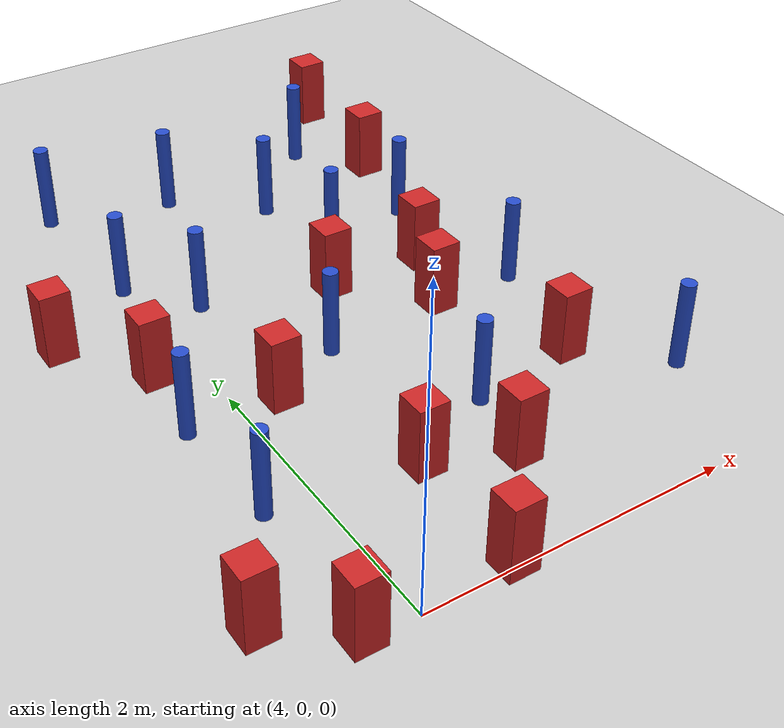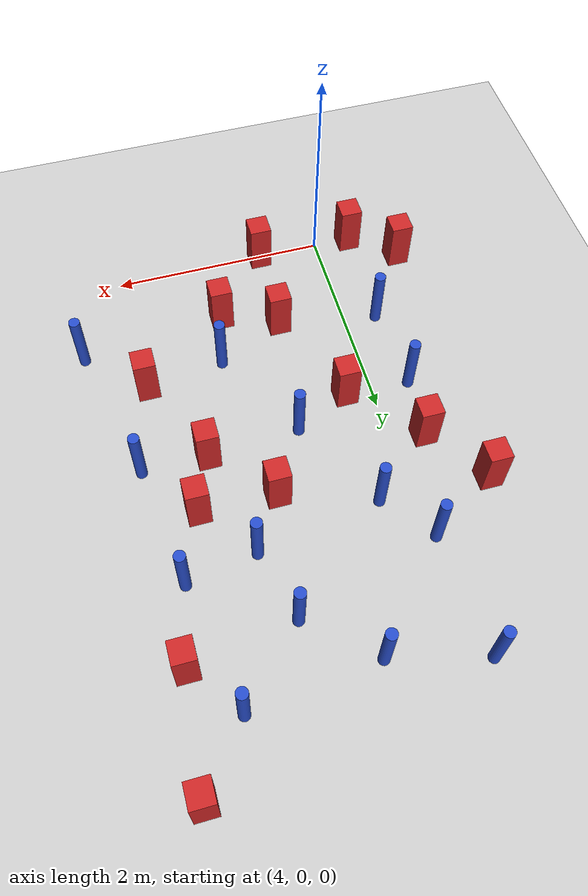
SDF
<sdf version="1.6">
 <world name="default">
  <model name="ground_plane">
   <static>1</static>
   <link name="link">
    <collision name="collision">
     <geometry><plane><normal>0 0 1</normal><size>100 100</size></plane></geometry>
     <surface><friction><ode><mu>100</mu><mu2>50</mu2></ode></friction></surface>
    </collision>
    <visual name="visual">
     <cast_shadows>0</cast_shadows>
     <geometry><plane><normal>0 0 1</normal><size>100 100</size></plane></geometry>
     <material>
      <ambient>1.0 1.0 1.0 1.0</ambient>
      <diffuse>0.8 0.8 0.8 1.0</diffuse>
      <specular>0.01 0.01 0.01 1.000000</specular>
     </material>
    </visual>
   </link>
  </model>
  <model name="pole_obstacle6">
   <static>true</static>
   <pose>5.24686441359 3.76029672284 7.38925637345e-09 -8.47170692798e-08 1.24976764937e-08 -1.74513093023e-07</pose>
   <link name="link">
    <pose>0 0 0.3 0 -0 0</pose>
    <inertial>
     <mass>1</mass>
     <inertia><ixx>0.145833</ixx><ixy>0</ixy><ixz>0</ixz><iyy>0.145833</iyy><iyz>0</iyz><izz>0.125</izz></inertia>
    </inertial>
    <collision name="collision">
     <geometry><cylinder><radius>0.05</radius><length>.6</length></cylinder></geometry>
    </collision>
    <visual name="visual">
     <geometry><cylinder><radius>0.05</radius><length>.6</length></cylinder></geometry>
     <material>
      <script><name>Gazebo/Blue</name><uri>file://media/materials/scripts/gazebo.material</uri></script>
     </material>
    </visual>
   </link>
  </model>
  <model name="square_post_obstacle30">
   <static>true</static>
   <pose>5.13288017218 0.674521279068 1.91545236811e-07 -7.35059704564e-06 1.12565212e-07 2.39332434364e-05</pose>
   <link name="link">
    <pose>0 0 0.25 0 -0 0</pose>
    <inertial>
     <mass>100</mass>
     <inertia>
      <ixx>0.166667</ixx>
      <ixy>0</ixy>
      <ixz>0</ixz>
      <iyy>0.166667</iyy>
      <iyz>0</iyz>
      <izz>0.166667</izz>
     </inertia>
    </inertial>
    <collision name="collision"><geometry><box><size>.2 .2 .5</size></box></geometry></collision>
    <visual name="visual">
     <geometry><box><size>.2 .2 .5</size></box></geometry>
     <material>
      <script><name>Gazebo/Red</name><uri>file://media/materials/scripts/gazebo.material</uri></script>
     </material>
    </visual>
   </link>
  </model>
  <model name="pole_obstacle37">
   <static>true</static>
   <pose>5.84280054387 4.3593617072 7.38925637345e-09 -8.47170692796e-08 1.24976764786e-08 -1.74513093032e-07</pose>
   <link name="link">
    <pose>0 0 0.3 0 -0 0</pose>
    <inertial>
     <mass>1</mass>
     <inertia><ixx>0.145833</ixx><ixy>0</ixy><ixz>0</ixz><iyy>0.145833</iyy><iyz>0</iyz><izz>0.125</izz></inertia>
    </inertial>
    <collision name="collision">
     <geometry><cylinder><radius>0.05</radius><length>.6</length></cylinder></geometry>
    </collision>
    <visual name="visual">
     <geometry><cylinder><radius>0.05</radius><length>.6</length></cylinder></geometry>
     <material>
      <script><name>Gazebo/Blue</name><uri>file://media/materials/scripts/gazebo.material</uri></script>
     </material>
    </visual>
   </link>
  </model>
  <model name="square_post_obstacle42">
   <static>true</static>
   <pose>3.70733429573 2.41052173213 1.91545236811e-07 -7.35059704564e-06 1.12565212e-07 2.39332434364e-05</pose>
   <link name="link">
    <pose>0 0 0.25 0 -0 0</pose>
    <inertial>
     <mass>100</mass>
     <inertia>
      <ixx>0.166667</ixx>
      <ixy>0</ixy>
      <ixz>0</ixz>
      <iyy>0.166667</iyy>
      <iyz>0</iyz>
      <izz>0.166667</izz>
     </inertia>
    </inertial>
    <collision name="collision"><geometry><box><size>.2 .2 .5</size></box></geometry></collision>
    <visual name="visual">
     <geometry><box><size>.2 .2 .5</size></box></geometry>
     <material>
      <script><name>Gazebo/Red</name><uri>file://media/materials/scripts/gazebo.material</uri></script>
     </material>
    </visual>
   </link>
  </model>
  <model name="pole_obstacle52">
   <static>true</static>
   <pose>3.86616990221 4.44570101452 7.38925637345e-09 -8.47170692798e-08 1.24976765033e-08 -1.74513093019e-07</pose>
   <link name="link">
    <pose>0 0 0.3 0 -0 0</pose>
    <inertial>
     <mass>1</mass>
     <inertia><ixx>0.145833</ixx><ixy>0</ixy><ixz>0</ixz><iyy>0.145833</iyy><iyz>0</iyz><izz>0.125</izz></inertia>
    </inertial>
    <collision name="collision">
     <geometry><cylinder><radius>0.05</radius><length>.6</length></cylinder></geometry>
    </collision>
    <visual name="visual">
     <geometry><cylinder><radius>0.05</radius><length>.6</length></cylinder></geometry>
     <material>
      <script><name>Gazebo/Blue</name><uri>file://media/materials/scripts/gazebo.material</uri></script>
     </material>
    </visual>
   </link>
  </model>
  <model name="pole_obstacle63">
   <static>true</static>
   <pose>4.76035839436 2.07022243836 7.38925637345e-09 -8.47170692798e-08 1.24976764937e-08 -1.74513093023e-07</pose>
   <link name="link">
    <pose>0 0 0.3 0 -0 0</pose>
    <inertial>
     <mass>1</mass>
     <inertia><ixx>0.145833</ixx><ixy>0</ixy><ixz>0</ixz><iyy>0.145833</iyy><iyz>0</iyz><izz>0.125</izz></inertia>
    </inertial>
    <collision name="collision">
     <geometry><cylinder><radius>0.05</radius><length>.6</length></cylinder></geometry>
    </collision>
    <visual name="visual">
     <geometry><cylinder><radius>0.05</radius><length>.6</length></cylinder></geometry>
     <material>
      <script><name>Gazebo/Blue</name><uri>file://media/materials/scripts/gazebo.material</uri></script>
     </material>
    </visual>
   </link>
  </model>
  <model name="square_post_obstacle75">
   <static>true</static>
   <pose>4.25424207896 1.82605460015 1.91545236811e-07 -7.35059704564e-06 1.12565212e-07 2.39332434364e-05</pose>
   <link name="link">
    <pose>0 0 0.25 0 -0 0</pose>
    <inertial>
     <mass>100</mass>
     <inertia>
      <ixx>0.166667</ixx>
      <ixy>0</ixy>
      <ixz>0</ixz>
      <iyy>0.166667</iyy>
      <iyz>0</iyz>
      <izz>0.166667</izz>
     </inertia>
    </inertial>
    <collision name="collision"><geometry><box><size>.2 .2 .5</size></box></geometry></collision>
    <visual name="visual">
     <geometry><box><size>.2 .2 .5</size></box></geometry>
     <material>
      <script><name>Gazebo/Red</name><uri>file://media/materials/scripts/gazebo.material</uri></script>
     </material>
    </visual>
   </link>
  </model>
  <model name="pole_obstacle73">
   <static>true</static>
   <pose>6.19446029751 2.12766933946 7.38925637345e-09 -8.47170692798e-08 1.24976764937e-08 -1.74513093023e-07</pose>
   <link name="link">
    <pose>0 0 0.3 0 -0 0</pose>
    <inertial>
     <mass>1</mass>
     <inertia><ixx>0.145833</ixx><ixy>0</ixy><ixz>0</ixz><iyy>0.145833</iyy><iyz>0</iyz><izz>0.125</izz></inertia>
    </inertial>
    <collision name="collision">
     <geometry><cylinder><radius>0.05</radius><length>.6</length></cylinder></geometry>
    </collision>
    <visual name="visual">
     <geometry><cylinder><radius>0.05</radius><length>.6</length></cylinder></geometry>
     <material>
      <script><name>Gazebo/Blue</name><uri>file://media/materials/scripts/gazebo.material</uri></script>
     </material>
    </visual>
   </link>
  </model>
  <model name="square_post_obstacle77">
   <static>true</static>
   <pose>5.11859508152 2.65492560635 1.91545236811e-07 -7.35059704564e-06 1.12565212e-07 2.39332434364e-05</pose>
   <link name="link">
    <pose>0 0 0.25 0 -0 0</pose>
    <inertial>
     <mass>100</mass>
     <inertia>
      <ixx>0.166667</ixx>
      <ixy>0</ixy>
      <ixz>0</ixz>
      <iyy>0.166667</iyy>
      <iyz>0</iyz>
      <izz>0.166667</izz>
     </inertia>
    </inertial>
    <collision name="collision"><geometry><box><size>.2 .2 .5</size></box></geometry></collision>
    <visual name="visual">
     <geometry><box><size>.2 .2 .5</size></box></geometry>
     <material>
      <script><name>Gazebo/Red</name><uri>file://media/materials/scripts/gazebo.material</uri></script>
     </material>
    </visual>
   </link>
  </model>
  <model name="pole_obstacle80">
   <static>true</static>
   <pose>3.93960398755 3.36603298096 7.38925637345e-09 -8.47170692798e-08 1.24976764939e-08 -1.74513093025e-07</pose>
   <link name="link">
    <pose>0 0 0.3 0 -0 0</pose>
    <inertial>
     <mass>1</mass>
     <inertia><ixx>0.145833</ixx><ixy>0</ixy><ixz>0</ixz><iyy>0.145833</iyy><iyz>0</iyz><izz>0.125</izz></inertia>
    </inertial>
    <collision name="collision">
     <geometry><cylinder><radius>0.05</radius><length>.6</length></cylinder></geometry>
    </collision>
    <visual name="visual">
     <geometry><cylinder><radius>0.05</radius><length>.6</length></cylinder></geometry>
     <material>
      <script><name>Gazebo/Blue</name><uri>file://media/materials/scripts/gazebo.material</uri></script>
     </material>
    </visual>
   </link>
  </model>
  <model name="pole_obstacle84">
   <static>true</static>
   <pose>5.24751490533 1.17985394361 7.38925637345e-09 -8.471706928e-08 1.24976765134e-08 -1.74513093015e-07</pose>
   <link name="link">
    <pose>0 0 0.3 0 -0 0</pose>
    <inertial>
     <mass>1</mass>
     <inertia><ixx>0.145833</ixx><ixy>0</ixy><ixz>0</ixz><iyy>0.145833</iyy><iyz>0</iyz><izz>0.125</izz></inertia>
    </inertial>
    <collision name="collision">
     <geometry><cylinder><radius>0.05</radius><length>.6</length></cylinder></geometry>
    </collision>
    <visual name="visual">
     <geometry><cylinder><radius>0.05</radius><length>.6</length></cylinder></geometry>
     <material>
      <script><name>Gazebo/Blue</name><uri>file://media/materials/scripts/gazebo.material</uri></script>
     </material>
    </visual>
   </link>
  </model>
  <model name="square_post_obstacle82">
   <static>true</static>
   <pose>3.66900997854 0.0325757577106 1.91545236811e-07 -7.35059704564e-06 1.12565212e-07 2.39332434364e-05</pose>
   <link name="link">
    <pose>0 0 0.25 0 -0 0</pose>
    <inertial>
     <mass>100</mass>
     <inertia>
      <ixx>0.166667</ixx>
      <ixy>0</ixy>
      <ixz>0</ixz>
      <iyy>0.166667</iyy>
      <iyz>0</iyz>
      <izz>0.166667</izz>
     </inertia>
    </inertial>
    <collision name="collision"><geometry><box><size>.2 .2 .5</size></box></geometry></collision>
    <visual name="visual">
     <geometry><box><size>.2 .2 .5</size></box></geometry>
     <material>
      <script><name>Gazebo/Red</name><uri>file://media/materials/scripts/gazebo.material</uri></script>
     </material>
    </visual>
   </link>
  </model>
  <model name="pole_obstacle90">
   <static>true</static>
   <pose>4.29182752671 2.92887068589 7.38925637345e-09 -8.47170692798e-08 1.24976764937e-08 -1.74513093023e-07</pose>
   <link name="link">
    <pose>0 0 0.3 0 -0 0</pose>
    <inertial>
     <mass>1</mass>
     <inertia><ixx>0.145833</ixx><ixy>0</ixy><ixz>0</ixz><iyy>0.145833</iyy><iyz>0</iyz><izz>0.125</izz></inertia>
    </inertial>
    <collision name="collision">
     <geometry><cylinder><radius>0.05</radius><length>.6</length></cylinder></geometry>
    </collision>
    <visual name="visual">
     <geometry><cylinder><radius>0.05</radius><length>.6</length></cylinder></geometry>
     <material>
      <script><name>Gazebo/Blue</name><uri>file://media/materials/scripts/gazebo.material</uri></script>
     </material>
    </visual>
   </link>
  </model>
  <model name="square_post_obstacle84">
   <static>true</static>
   <pose>5.80404412261 2.63800593922 1.91545236811e-07 -7.35059704564e-06 1.12565212e-07 2.39332434364e-05</pose>
   <link name="link">
    <pose>0 0 0.25 0 -0 0</pose>
    <inertial>
     <mass>100</mass>
     <inertia>
      <ixx>0.166667</ixx>
      <ixy>0</ixy>
      <ixz>0</ixz>
      <iyy>0.166667</iyy>
      <iyz>0</iyz>
      <izz>0.166667</izz>
     </inertia>
    </inertial>
    <collision name="collision"><geometry><box><size>.2 .2 .5</size></box></geometry></collision>
    <visual name="visual">
     <geometry><box><size>.2 .2 .5</size></box></geometry>
     <material>
      <script><name>Gazebo/Red</name><uri>file://media/materials/scripts/gazebo.material</uri></script>
     </material>
    </visual>
   </link>
  </model>
  <model name="pole_obstacle100">
   <static>true</static>
   <pose>3.6477077047 1.84033119703 7.38925637345e-09 -8.471706928e-08 1.24976765152e-08 -1.74513093012e-07</pose>
   <link name="link">
    <pose>0 0 0.3 0 -0 0</pose>
    <inertial>
     <mass>1</mass>
     <inertia><ixx>0.145833</ixx><ixy>0</ixy><ixz>0</ixz><iyy>0.145833</iyy><iyz>0</iyz><izz>0.125</izz></inertia>
    </inertial>
    <collision name="collision">
     <geometry><cylinder><radius>0.05</radius><length>.6</length></cylinder></geometry>
    </collision>
    <visual name="visual">
     <geometry><cylinder><radius>0.05</radius><length>.6</length></cylinder></geometry>
     <material>
      <script><name>Gazebo/Blue</name><uri>file://media/materials/scripts/gazebo.material</uri></script>
     </material>
    </visual>
   </link>
  </model>
  <model name="square_post_obstacle90">
   <static>true</static>
   <pose>4.58704493301 0.0254031396948 1.91545236811e-07 -7.35059704564e-06 1.12565212e-07 2.39332434364e-05</pose>
   <link name="link">
    <pose>0 0 0.25 0 -0 0</pose>
    <inertial>
     <mass>100</mass>
     <inertia>
      <ixx>0.166667</ixx>
      <ixy>0</ixy>
      <ixz>0</ixz>
      <iyy>0.166667</iyy>
      <iyz>0</iyz>
      <izz>0.166667</izz>
     </inertia>
    </inertial>
    <collision name="collision"><geometry><box><size>.2 .2 .5</size></box></geometry></collision>
    <visual name="visual">
     <geometry><box><size>.2 .2 .5</size></box></geometry>
     <material>
      <script><name>Gazebo/Red</name><uri>file://media/materials/scripts/gazebo.material</uri></script>
     </material>
    </visual>
   </link>
  </model>
  <model name="square_post_obstacle98">
   <static>true</static>
   <pose>6.18719778903 3.91540696605 1.91545236811e-07 -7.35059704564e-06 1.12565212e-07 2.39332434364e-05</pose>
   <link name="link">
    <pose>0 0 0.25 0 -0 0</pose>
    <inertial>
     <mass>100</mass>
     <inertia>
      <ixx>0.166667</ixx>
      <ixy>0</ixy>
      <ixz>0</ixz>
      <iyy>0.166667</iyy>
      <iyz>0</iyz>
      <izz>0.166667</izz>
     </inertia>
    </inertial>
    <collision name="collision"><geometry><box><size>.2 .2 .5</size></box></geometry></collision>
    <visual name="visual">
     <geometry><box><size>.2 .2 .5</size></box></geometry>
     <material>
      <script><name>Gazebo/Red</name><uri>file://media/materials/scripts/gazebo.material</uri></script>
     </material>
    </visual>
   </link>
  </model>
  <model name="pole_obstacle124">
   <static>true</static>
   <pose>6.0472711642 3.23607107506 7.38925637345e-09 -8.47170692798e-08 1.24976764937e-08 -1.74513093023e-07</pose>
   <link name="link">
    <pose>0 0 0.3 0 -0 0</pose>
    <inertial>
     <mass>1</mass>
     <inertia><ixx>0.145833</ixx><ixy>0</ixy><ixz>0</ixz><iyy>0.145833</iyy><iyz>0</iyz><izz>0.125</izz></inertia>
    </inertial>
    <collision name="collision">
     <geometry><cylinder><radius>0.05</radius><length>.6</length></cylinder></geometry>
    </collision>
    <visual name="visual">
     <geometry><cylinder><radius>0.05</radius><length>.6</length></cylinder></geometry>
     <material>
      <script><name>Gazebo/Blue</name><uri>file://media/materials/scripts/gazebo.material</uri></script>
     </material>
    </visual>
   </link>
  </model>
  <model name="pole_obstacle126">
   <static>true</static>
   <pose>3.69420544465 1.0326985294 7.38925637345e-09 -8.47170692793e-08 1.2497676438e-08 -1.74513093043e-07</pose>
   <link name="link">
    <pose>0 0 0.3 0 -0 0</pose>
    <inertial>
     <mass>1</mass>
     <inertia><ixx>0.145833</ixx><ixy>0</ixy><ixz>0</ixz><iyy>0.145833</iyy><iyz>0</iyz><izz>0.125</izz></inertia>
    </inertial>
    <collision name="collision">
     <geometry><cylinder><radius>0.05</radius><length>.6</length></cylinder></geometry>
    </collision>
    <visual name="visual">
     <geometry><cylinder><radius>0.05</radius><length>.6</length></cylinder></geometry>
     <material>
      <script><name>Gazebo/Blue</name><uri>file://media/materials/scripts/gazebo.material</uri></script>
     </material>
    </visual>
   </link>
  </model>
  <model name="square_post_obstacle114">
   <static>true</static>
   <pose>5.60409998075 2.13952415268 1.91545236811e-07 -7.35059704564e-06 1.12565212e-07 2.39332434364e-05</pose>
   <link name="link">
    <pose>0 0 0.25 0 -0 0</pose>
    <inertial>
     <mass>100</mass>
     <inertia>
      <ixx>0.166667</ixx>
      <ixy>0</ixy>
      <ixz>0</ixz>
      <iyy>0.166667</iyy>
      <iyz>0</iyz>
      <izz>0.166667</izz>
     </inertia>
    </inertial>
    <collision name="collision"><geometry><box><size>.2 .2 .5</size></box></geometry></collision>
    <visual name="visual">
     <geometry><box><size>.2 .2 .5</size></box></geometry>
     <material>
      <script><name>Gazebo/Red</name><uri>file://media/materials/scripts/gazebo.material</uri></script>
     </material>
    </visual>
   </link>
  </model>
  <model name="pole_obstacle132">
   <static>true</static>
   <pose>5.4146138125 3.12393097636 7.38925637345e-09 -8.47170692798e-08 1.24976764937e-08 -1.74513093023e-07</pose>
   <link name="link">
    <pose>0 0 0.3 0 -0 0</pose>
    <inertial>
     <mass>1</mass>
     <inertia><ixx>0.145833</ixx><ixy>0</ixy><ixz>0</ixz><iyy>0.145833</iyy><iyz>0</iyz><izz>0.125</izz></inertia>
    </inertial>
    <collision name="collision">
     <geometry><cylinder><radius>0.05</radius><length>.6</length></cylinder></geometry>
    </collision>
    <visual name="visual">
     <geometry><cylinder><radius>0.05</radius><length>.6</length></cylinder></geometry>
     <material>
      <script><name>Gazebo/Blue</name><uri>file://media/materials/scripts/gazebo.material</uri></script>
     </material>
    </visual>
   </link>
  </model>
  <model name="square_post_obstacle116">
   <static>true</static>
   <pose>3.31624651936 2.96142785672 1.91545236811e-07 -7.35059704564e-06 1.12565212e-07 2.39332434364e-05</pose>
   <link name="link">
    <pose>0 0 0.25 0 -0 0</pose>
    <inertial>
     <mass>100</mass>
     <inertia>
      <ixx>0.166667</ixx>
      <ixy>0</ixy>
      <ixz>0</ixz>
      <iyy>0.166667</iyy>
      <iyz>0</iyz>
      <izz>0.166667</izz>
     </inertia>
    </inertial>
    <collision name="collision"><geometry><box><size>.2 .2 .5</size></box></geometry></collision>
    <visual name="visual">
     <geometry><box><size>.2 .2 .5</size></box></geometry>
     <material>
      <script><name>Gazebo/Red</name><uri>file://media/materials/scripts/gazebo.material</uri></script>
     </material>
    </visual>
   </link>
  </model>
  <model name="square_post_obstacle146">
   <static>true</static>
   <pose>6.27519345454 4.89837691135 1.91545236811e-07 -7.35059704564e-06 1.12565212e-07 2.39332434364e-05</pose>
   <link name="link">
    <pose>0 0 0.25 0 -0 0</pose>
    <inertial>
     <mass>100</mass>
     <inertia>
      <ixx>0.166667</ixx>
      <ixy>0</ixy>
      <ixz>0</ixz>
      <iyy>0.166667</iyy>
      <iyz>0</iyz>
      <izz>0.166667</izz>
     </inertia>
    </inertial>
    <collision name="collision"><geometry><box><size>.2 .2 .5</size></box></geometry></collision>
    <visual name="visual">
     <geometry><box><size>.2 .2 .5</size></box></geometry>
     <material>
      <script><name>Gazebo/Red</name><uri>file://media/materials/scripts/gazebo.material</uri></script>
     </material>
    </visual>
   </link>
  </model>
  <model name="pole_obstacle175">
   <static>true</static>
   <pose>6.47920280078 0.814747904 7.38925637345e-09 -8.47170692799e-08 1.24976765038e-08 -1.74513093018e-07</pose>
   <link name="link">
    <pose>0 0 0.3 0 -0 0</pose>
    <inertial>
     <mass>1</mass>
     <inertia><ixx>0.145833</ixx><ixy>0</ixy><ixz>0</ixz><iyy>0.145833</iyy><iyz>0</iyz><izz>0.125</izz></inertia>
    </inertial>
    <collision name="collision">
     <geometry><cylinder><radius>0.05</radius><length>.6</length></cylinder></geometry>
    </collision>
    <visual name="visual">
     <geometry><cylinder><radius>0.05</radius><length>.6</length></cylinder></geometry>
     <material>
      <script><name>Gazebo/Blue</name><uri>file://media/materials/scripts/gazebo.material</uri></script>
     </material>
    </visual>
   </link>
  </model>
  <model name="square_post_obstacle172">
   <static>true</static>
   <pose>3.25594022626 0.350049426285 1.91545236811e-07 -7.35059704564e-06 1.12565212e-07 2.39332434364e-05</pose>
   <link name="link">
    <pose>0 0 0.25 0 -0 0</pose>
    <inertial>
     <mass>100</mass>
     <inertia>
      <ixx>0.166667</ixx>
      <ixy>0</ixy>
      <ixz>0</ixz>
      <iyy>0.166667</iyy>
      <iyz>0</iyz>
      <izz>0.166667</izz>
     </inertia>
    </inertial>
    <collision name="collision"><geometry><box><size>.2 .2 .5</size></box></geometry></collision>
    <visual name="visual">
     <geometry><box><size>.2 .2 .5</size></box></geometry>
     <material>
      <script><name>Gazebo/Red</name><uri>file://media/materials/scripts/gazebo.material</uri></script>
     </material>
    </visual>
   </link>
  </model>
  <model name="pole_obstacle194">
   <static>true</static>
   <pose>4.69564321062 4.23524498851 7.38925637345e-09 -8.47170692796e-08 1.24976764786e-08 -1.74513093032e-07</pose>
   <link name="link">
    <pose>0 0 0.3 0 -0 0</pose>
    <inertial>
     <mass>1</mass>
     <inertia><ixx>0.145833</ixx><ixy>0</ixy><ixz>0</ixz><iyy>0.145833</iyy><iyz>0</iyz><izz>0.125</izz></inertia>
    </inertial>
    <collision name="collision">
     <geometry><cylinder><radius>0.05</radius><length>.6</length></cylinder></geometry>
    </collision>
    <visual name="visual">
     <geometry><cylinder><radius>0.05</radius><length>.6</length></cylinder></geometry>
     <material>
      <script><name>Gazebo/Blue</name><uri>file://media/materials/scripts/gazebo.material</uri></script>
     </material>
    </visual>
   </link>
  </model>
  <model name="square_post_obstacle195">
   <static>true</static>
   <pose>5.97178585754 1.29063541937 1.91545236811e-07 -7.35059704564e-06 1.12565212e-07 2.39332434364e-05</pose>
   <link name="link">
    <pose>0 0 0.25 0 -0 0</pose>
    <inertial>
     <mass>100</mass>
     <inertia>
      <ixx>0.166667</ixx>
      <ixy>0</ixy>
      <ixz>0</ixz>
      <iyy>0.166667</iyy>
      <iyz>0</iyz>
      <izz>0.166667</izz>
     </inertia>
    </inertial>
    <collision name="collision"><geometry><box><size>.2 .2 .5</size></box></geometry></collision>
    <visual name="visual">
     <geometry><box><size>.2 .2 .5</size></box></geometry>
     <material>
      <script><name>Gazebo/Red</name><uri>file://media/materials/scripts/gazebo.material</uri></script>
     </material>
    </visual>
   </link>
  </model>
  <model name="square_post_obstacle207">
   <static>true</static>
   <pose>4.62406586982 0.883056730544 1.91545236811e-07 -7.35059704564e-06 1.12565212e-07 2.39332434364e-05</pose>
   <link name="link">
    <pose>0 0 0.25 0 -0 0</pose>
    <inertial>
     <mass>100</mass>
     <inertia>
      <ixx>0.166667</ixx>
      <ixy>0</ixy>
      <ixz>0</ixz>
      <iyy>0.166667</iyy>
      <iyz>0</iyz>
      <izz>0.166667</izz>
     </inertia>
    </inertial>
    <collision name="collision"><geometry><box><size>.2 .2 .5</size></box></geometry></collision>
    <visual name="visual">
     <geometry><box><size>.2 .2 .5</size></box></geometry>
     <material>
      <script><name>Gazebo/Red</name><uri>file://media/materials/scripts/gazebo.material</uri></script>
     </material>
    </visual>
   </link>
  </model>
 </world>
</sdf>
